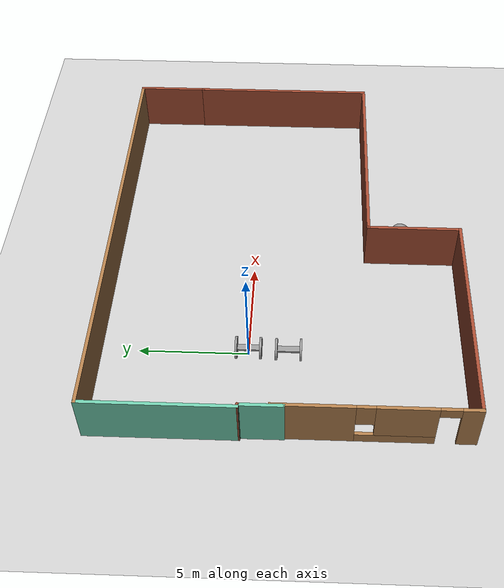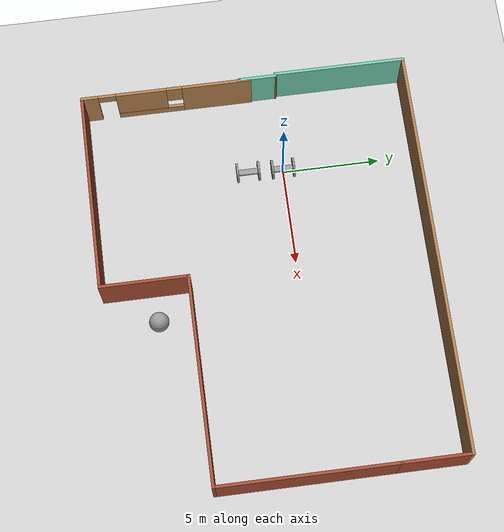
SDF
<sdf version="1.6">
 <world name="default">
  <plugin name="hello" filename="libhello.so"/>
  <light name="sun" type="directional">
   <pose>0 0 10 0 -0 0</pose>
   <diffuse>0.8 0.8 0.8 1</diffuse>
   <specular>0.2 0.2 0.2 1</specular>
   <attenuation>
    <range>1000</range>
    <constant>0.9</constant>
    <linear>0.01</linear>
    <quadratic>0.001</quadratic>
   </attenuation>
   <direction>-0.5 0.1 -0.9</direction>
  </light>
  <model name="ground_plane">
   <static>1</static>
   <link name="link">
    <collision name="collision">
     <geometry><plane><normal>0 0 1</normal><size>100 100</size></plane></geometry>
     <surface>
      <contact><collide_bitmask>65535</collide_bitmask></contact>
      <friction><ode><mu>100</mu><mu2>50</mu2></ode></friction>
     </surface>
    </collision>
    <visual name="visual">
     <cast_shadows>0</cast_shadows>
     <geometry><plane><normal>0 0 1</normal><size>100 100</size></plane></geometry>
     <material>
      <script><uri>file://media/materials/scripts/gazebo.material</uri><name>Gazebo/Grey</name></script>
     </material>
    </visual>
   </link>
  </model>
  <gravity>0 0 -9.8</gravity>
  <magnetic_field>6e-06 2.3e-05 -4.2e-05</magnetic_field>
  <atmosphere type="adiabatic"/>
  <physics name="default_physics" default="0" type="ode">
   <max_step_size>0.001</max_step_size>
   <real_time_factor>1</real_time_factor>
   <real_time_update_rate>1000</real_time_update_rate>
  </physics>
  <scene><ambient>0.4 0.4 0.4 1</ambient><background>0.7 0.7 0.7 1</background><shadows>1</shadows></scene>
  <audio><device>default</device></audio>
  <spherical_coordinates>
   <surface_model>EARTH_WGS84</surface_model>
   <latitude_deg>0</latitude_deg>
   <longitude_deg>0</longitude_deg>
   <elevation>0</elevation>
   <heading_deg>0</heading_deg>
  </spherical_coordinates>
  <model name="robothigh">
   <link name="link_0">
    <inertial>
     <mass>1</mass>
     <inertia>
      <ixx>0.166667</ixx>
      <ixy>0</ixy>
      <ixz>0</ixz>
      <iyy>0.166667</iyy>
      <iyz>0</iyz>
      <izz>0.166667</izz>
     </inertia>
    </inertial>
    <visual name="visual">
     <geometry><box><size>0.3 1 0.1</size></box></geometry>
     <material>
      <lighting>1</lighting>
      <script><uri>file://media/materials/scripts/gazebo.material</uri><name>Gazebo/Grey</name></script>
      <shader type="vertex"><normal_map>__default__</normal_map></shader>
      <ambient>0.3 0.3 0.3 1</ambient>
      <diffuse>0.7 0.7 0.7 1</diffuse>
      <specular>0.01 0.01 0.01 1</specular>
      <emissive>0 0 0 1</emissive>
     </material>
    </visual>
    <collision name="collision">
     <geometry><box><size>0.3 1 0.1</size></box></geometry>
     <surface>
      <friction>
       <ode><mu>1</mu><mu2>1</mu2><fdir1>0 0 0</fdir1><slip1>0</slip1><slip2>0</slip2></ode>
       <torsional>
        <coefficient>1</coefficient>
        <patch_radius>0</patch_radius>
        <surface_radius>0</surface_radius>
        <use_patch_radius>1</use_patch_radius>
        <ode><slip>0</slip></ode>
       </torsional>
      </friction>
      <bounce><restitution_coefficient>0</restitution_coefficient><threshold>1e+06</threshold></bounce>
      <contact>
       <collide_without_contact>0</collide_without_contact>
       <collide_without_contact_bitmask>1</collide_without_contact_bitmask>
       <collide_bitmask>1</collide_bitmask>
       <ode>
        <soft_cfm>0</soft_cfm>
        <soft_erp>0.2</soft_erp>
        <kp>1e+13</kp>
        <kd>1</kd>
        <max_vel>0.01</max_vel>
        <min_depth>0</min_depth>
       </ode>
       <bullet>
        <split_impulse>1</split_impulse>
        <split_impulse_penetration_threshold>-0.01</split_impulse_penetration_threshold>
        <soft_cfm>0</soft_cfm>
        <soft_erp>0.2</soft_erp>
        <kp>1e+13</kp>
        <kd>1</kd>
       </bullet>
      </contact>
     </surface>
    </collision>
   </link>
   <link name="link_1">
    <inertial>
     <mass>1</mass>
     <inertia><ixx>0.145833</ixx><ixy>0</ixy><ixz>0</ixz><iyy>0.145833</iyy><iyz>0</iyz><izz>0.125</izz></inertia>
    </inertial>
    <pose>0 -0.550048 0 1.5707 -0 0</pose>
    <visual name="visual">
     <geometry><cylinder><radius>0.5</radius><length>0.1</length></cylinder></geometry>
     <material>
      <lighting>1</lighting>
      <script><uri>file://media/materials/scripts/gazebo.material</uri><name>Gazebo/Grey</name></script>
      <shader type="vertex"><normal_map>__default__</normal_map></shader>
      <ambient>0.3 0.3 0.3 1</ambient>
      <diffuse>0.7 0.7 0.7 1</diffuse>
      <specular>0.01 0.01 0.01 1</specular>
      <emissive>0 0 0 1</emissive>
     </material>
    </visual>
    <collision name="collision">
     <geometry><cylinder><radius>0.5</radius><length>0.1</length></cylinder></geometry>
     <surface>
      <friction>
       <ode><mu>1</mu><mu2>1</mu2><fdir1>0 0 0</fdir1><slip1>0</slip1><slip2>0</slip2></ode>
       <torsional>
        <coefficient>1</coefficient>
        <patch_radius>0</patch_radius>
        <surface_radius>0</surface_radius>
        <use_patch_radius>1</use_patch_radius>
        <ode><slip>0</slip></ode>
       </torsional>
      </friction>
      <bounce><restitution_coefficient>0</restitution_coefficient><threshold>1e+06</threshold></bounce>
      <contact>
       <collide_without_contact>0</collide_without_contact>
       <collide_without_contact_bitmask>1</collide_without_contact_bitmask>
       <collide_bitmask>1</collide_bitmask>
       <ode>
        <soft_cfm>0</soft_cfm>
        <soft_erp>0.2</soft_erp>
        <kp>1e+13</kp>
        <kd>1</kd>
        <max_vel>0.01</max_vel>
        <min_depth>0</min_depth>
       </ode>
       <bullet>
        <split_impulse>1</split_impulse>
        <split_impulse_penetration_threshold>-0.01</split_impulse_penetration_threshold>
        <soft_cfm>0</soft_cfm>
        <soft_erp>0.2</soft_erp>
        <kp>1e+13</kp>
        <kd>1</kd>
       </bullet>
      </contact>
     </surface>
    </collision>
   </link>
   <link name="link_1_clone">
    <inertial>
     <mass>1</mass>
     <inertia><ixx>0.145833</ixx><ixy>0</ixy><ixz>0</ixz><iyy>0.145833</iyy><iyz>0</iyz><izz>0.125</izz></inertia>
    </inertial>
    <pose>0 0.550048 0 1.5707 -0 0</pose>
    <visual name="visual">
     <geometry><cylinder><radius>0.5</radius><length>0.1</length></cylinder></geometry>
     <material>
      <lighting>1</lighting>
      <script><uri>file://media/materials/scripts/gazebo.material</uri><name>Gazebo/Grey</name></script>
      <shader type="vertex"><normal_map>__default__</normal_map></shader>
      <ambient>0.3 0.3 0.3 1</ambient>
      <diffuse>0.7 0.7 0.7 1</diffuse>
      <specular>0.01 0.01 0.01 1</specular>
      <emissive>0 0 0 1</emissive>
     </material>
    </visual>
    <collision name="collision">
     <geometry><cylinder><radius>0.5</radius><length>0.1</length></cylinder></geometry>
     <surface>
      <friction>
       <ode><mu>1</mu><mu2>1</mu2><fdir1>0 0 0</fdir1><slip1>0</slip1><slip2>0</slip2></ode>
       <torsional>
        <coefficient>1</coefficient>
        <patch_radius>0</patch_radius>
        <surface_radius>0</surface_radius>
        <use_patch_radius>1</use_patch_radius>
        <ode><slip>0</slip></ode>
       </torsional>
      </friction>
      <bounce><restitution_coefficient>0</restitution_coefficient><threshold>1e+06</threshold></bounce>
      <contact>
       <collide_without_contact>0</collide_without_contact>
       <collide_without_contact_bitmask>1</collide_without_contact_bitmask>
       <collide_bitmask>1</collide_bitmask>
       <ode>
        <soft_cfm>0</soft_cfm>
        <soft_erp>0.2</soft_erp>
        <kp>1e+13</kp>
        <kd>1</kd>
        <max_vel>0.01</max_vel>
        <min_depth>0</min_depth>
       </ode>
       <bullet>
        <split_impulse>1</split_impulse>
        <split_impulse_penetration_threshold>-0.01</split_impulse_penetration_threshold>
        <soft_cfm>0</soft_cfm>
        <soft_erp>0.2</soft_erp>
        <kp>1e+13</kp>
        <kd>1</kd>
       </bullet>
      </contact>
     </surface>
    </collision>
   </link>
   <joint name="link_0_JOINT_1" type="revolute">
    <parent>link_0</parent>
    <child>link_1</child>
    <axis>
     <xyz>0 0 1</xyz>
     <use_parent_model_frame>0</use_parent_model_frame>
     <limit>
      <lower>-1.79769e+308</lower>
      <upper>1.79769e+308</upper>
      <effort>-1</effort>
      <velocity>-1</velocity>
     </limit>
     <dynamics>
      <spring_reference>0</spring_reference>
      <spring_stiffness>0</spring_stiffness>
      <damping>0</damping>
     </dynamics>
    </axis>
    <physics>
     <ode><limit><cfm>0</cfm><erp>0.2</erp></limit><suspension><cfm>0</cfm><erp>0.2</erp></suspension></ode>
    </physics>
   </joint>
   <joint name="link_0_JOINT_2" type="revolute">
    <parent>link_0</parent>
    <child>link_1_clone</child>
    <axis>
     <xyz>0 0 1</xyz>
     <use_parent_model_frame>0</use_parent_model_frame>
     <limit>
      <lower>-1.79769e+308</lower>
      <upper>1.79769e+308</upper>
      <effort>-1</effort>
      <velocity>-1</velocity>
     </limit>
     <dynamics>
      <spring_reference>0</spring_reference>
      <spring_stiffness>0</spring_stiffness>
      <damping>0</damping>
     </dynamics>
    </axis>
    <physics>
     <ode><limit><cfm>0</cfm><erp>0.2</erp></limit><suspension><cfm>0</cfm><erp>0.2</erp></suspension></ode>
    </physics>
   </joint>
   <static>0</static>
   <pose>0 -0.000995 0.500005 0 -0 0</pose>
  </model>
  <model name="robothigh_clone">
   <link name="link_0">
    <inertial>
     <mass>1</mass>
     <inertia>
      <ixx>0.166667</ixx>
      <ixy>0</ixy>
      <ixz>0</ixz>
      <iyy>0.166667</iyy>
      <iyz>0</iyz>
      <izz>0.166667</izz>
     </inertia>
    </inertial>
    <visual name="visual">
     <geometry><box><size>0.3 1 0.1</size></box></geometry>
     <material>
      <lighting>1</lighting>
      <script><uri>file://media/materials/scripts/gazebo.material</uri><name>Gazebo/Grey</name></script>
      <shader type="vertex"><normal_map>__default__</normal_map></shader>
      <ambient>0.3 0.3 0.3 1</ambient>
      <diffuse>0.7 0.7 0.7 1</diffuse>
      <specular>0.01 0.01 0.01 1</specular>
      <emissive>0 0 0 1</emissive>
     </material>
    </visual>
    <collision name="collision">
     <geometry><box><size>0.3 1 0.1</size></box></geometry>
     <surface>
      <friction>
       <ode><mu>1</mu><mu2>1</mu2><fdir1>0 0 0</fdir1><slip1>0</slip1><slip2>0</slip2></ode>
       <torsional>
        <coefficient>1</coefficient>
        <patch_radius>0</patch_radius>
        <surface_radius>0</surface_radius>
        <use_patch_radius>1</use_patch_radius>
        <ode><slip>0</slip></ode>
       </torsional>
      </friction>
      <bounce><restitution_coefficient>0</restitution_coefficient><threshold>1e+06</threshold></bounce>
      <contact>
       <collide_without_contact>0</collide_without_contact>
       <collide_without_contact_bitmask>1</collide_without_contact_bitmask>
       <collide_bitmask>1</collide_bitmask>
       <ode>
        <soft_cfm>0</soft_cfm>
        <soft_erp>0.2</soft_erp>
        <kp>1e+13</kp>
        <kd>1</kd>
        <max_vel>0.01</max_vel>
        <min_depth>0</min_depth>
       </ode>
       <bullet>
        <split_impulse>1</split_impulse>
        <split_impulse_penetration_threshold>-0.01</split_impulse_penetration_threshold>
        <soft_cfm>0</soft_cfm>
        <soft_erp>0.2</soft_erp>
        <kp>1e+13</kp>
        <kd>1</kd>
       </bullet>
      </contact>
     </surface>
    </collision>
   </link>
   <link name="link_1">
    <inertial>
     <mass>1</mass>
     <inertia><ixx>0.145833</ixx><ixy>0</ixy><ixz>0</ixz><iyy>0.145833</iyy><iyz>0</iyz><izz>0.125</izz></inertia>
    </inertial>
    <pose>0 -0.550048 0 1.5707 -0 0</pose>
    <visual name="visual">
     <geometry><cylinder><radius>0.5</radius><length>0.1</length></cylinder></geometry>
     <material>
      <lighting>1</lighting>
      <script><uri>file://media/materials/scripts/gazebo.material</uri><name>Gazebo/Grey</name></script>
      <shader type="vertex"><normal_map>__default__</normal_map></shader>
      <ambient>0.3 0.3 0.3 1</ambient>
      <diffuse>0.7 0.7 0.7 1</diffuse>
      <specular>0.01 0.01 0.01 1</specular>
      <emissive>0 0 0 1</emissive>
     </material>
    </visual>
    <collision name="collision">
     <geometry><cylinder><radius>0.5</radius><length>0.1</length></cylinder></geometry>
     <surface>
      <friction>
       <ode><mu>1</mu><mu2>1</mu2><fdir1>0 0 0</fdir1><slip1>0</slip1><slip2>0</slip2></ode>
       <torsional>
        <coefficient>1</coefficient>
        <patch_radius>0</patch_radius>
        <surface_radius>0</surface_radius>
        <use_patch_radius>1</use_patch_radius>
        <ode><slip>0</slip></ode>
       </torsional>
      </friction>
      <bounce><restitution_coefficient>0</restitution_coefficient><threshold>1e+06</threshold></bounce>
      <contact>
       <collide_without_contact>0</collide_without_contact>
       <collide_without_contact_bitmask>1</collide_without_contact_bitmask>
       <collide_bitmask>1</collide_bitmask>
       <ode>
        <soft_cfm>0</soft_cfm>
        <soft_erp>0.2</soft_erp>
        <kp>1e+13</kp>
        <kd>1</kd>
        <max_vel>0.01</max_vel>
        <min_depth>0</min_depth>
       </ode>
       <bullet>
        <split_impulse>1</split_impulse>
        <split_impulse_penetration_threshold>-0.01</split_impulse_penetration_threshold>
        <soft_cfm>0</soft_cfm>
        <soft_erp>0.2</soft_erp>
        <kp>1e+13</kp>
        <kd>1</kd>
       </bullet>
      </contact>
     </surface>
    </collision>
   </link>
   <link name="link_1_clone">
    <inertial>
     <mass>1</mass>
     <inertia><ixx>0.145833</ixx><ixy>0</ixy><ixz>0</ixz><iyy>0.145833</iyy><iyz>0</iyz><izz>0.125</izz></inertia>
    </inertial>
    <pose>0 0.550048 0 1.5707 -0 0</pose>
    <visual name="visual">
     <geometry><cylinder><radius>0.5</radius><length>0.1</length></cylinder></geometry>
     <material>
      <lighting>1</lighting>
      <script><uri>file://media/materials/scripts/gazebo.material</uri><name>Gazebo/Grey</name></script>
      <shader type="vertex"><normal_map>__default__</normal_map></shader>
      <ambient>0.3 0.3 0.3 1</ambient>
      <diffuse>0.7 0.7 0.7 1</diffuse>
      <specular>0.01 0.01 0.01 1</specular>
      <emissive>0 0 0 1</emissive>
     </material>
    </visual>
    <collision name="collision">
     <geometry><cylinder><radius>0.5</radius><length>0.1</length></cylinder></geometry>
     <surface>
      <friction>
       <ode><mu>1</mu><mu2>1</mu2><fdir1>0 0 0</fdir1><slip1>0</slip1><slip2>0</slip2></ode>
       <torsional>
        <coefficient>1</coefficient>
        <patch_radius>0</patch_radius>
        <surface_radius>0</surface_radius>
        <use_patch_radius>1</use_patch_radius>
        <ode><slip>0</slip></ode>
       </torsional>
      </friction>
      <bounce><restitution_coefficient>0</restitution_coefficient><threshold>1e+06</threshold></bounce>
      <contact>
       <collide_without_contact>0</collide_without_contact>
       <collide_without_contact_bitmask>1</collide_without_contact_bitmask>
       <collide_bitmask>1</collide_bitmask>
       <ode>
        <soft_cfm>0</soft_cfm>
        <soft_erp>0.2</soft_erp>
        <kp>1e+13</kp>
        <kd>1</kd>
        <max_vel>0.01</max_vel>
        <min_depth>0</min_depth>
       </ode>
       <bullet>
        <split_impulse>1</split_impulse>
        <split_impulse_penetration_threshold>-0.01</split_impulse_penetration_threshold>
        <soft_cfm>0</soft_cfm>
        <soft_erp>0.2</soft_erp>
        <kp>1e+13</kp>
        <kd>1</kd>
       </bullet>
      </contact>
     </surface>
    </collision>
   </link>
   <joint name="link_0_JOINT_1" type="revolute">
    <parent>link_0</parent>
    <child>link_1</child>
    <axis>
     <xyz>0 0 1</xyz>
     <use_parent_model_frame>0</use_parent_model_frame>
     <limit>
      <lower>-1.79769e+308</lower>
      <upper>1.79769e+308</upper>
      <effort>-1</effort>
      <velocity>-1</velocity>
     </limit>
     <dynamics>
      <spring_reference>0</spring_reference>
      <spring_stiffness>0</spring_stiffness>
      <damping>0</damping>
     </dynamics>
    </axis>
    <physics>
     <ode><limit><cfm>0</cfm><erp>0.2</erp></limit><suspension><cfm>0</cfm><erp>0.2</erp></suspension></ode>
    </physics>
   </joint>
   <joint name="link_0_JOINT_2" type="revolute">
    <parent>link_0</parent>
    <child>link_1_clone</child>
    <axis>
     <xyz>0 0 1</xyz>
     <use_parent_model_frame>0</use_parent_model_frame>
     <limit>
      <lower>-1.79769e+308</lower>
      <upper>1.79769e+308</upper>
      <effort>-1</effort>
      <velocity>-1</velocity>
     </limit>
     <dynamics>
      <spring_reference>0</spring_reference>
      <spring_stiffness>0</spring_stiffness>
      <damping>0</damping>
     </dynamics>
    </axis>
    <physics>
     <ode><limit><cfm>0</cfm><erp>0.2</erp></limit><suspension><cfm>0</cfm><erp>0.2</erp></suspension></ode>
    </physics>
   </joint>
   <static>0</static>
   <pose>-0.035905 -1.80641 0.500003 3e-06 -0 0</pose>
  </model>
  <model name="building2">
   <pose>5.87157 -1.505 0 0 -0 0</pose>
   <link name="Wall_0">
    <pose>-10.1416 -3.975 0 0 -0 -1.5708</pose>
    <visual name="Wall_0_Visual_0">
     <pose>-2.5932 0 1.25 0 -0 0</pose>
     <geometry><box><size>3.5636 0.15 2.5</size></box></geometry>
     <material>
      <script><uri>file://media/materials/scripts/gazebo.material</uri><name>Gazebo/Wood</name></script>
      <ambient>1 1 1 1</ambient>
     </material>
     <meta><layer>0</layer></meta>
    </visual>
    <collision name="Wall_0_Collision_0">
     <geometry><box><size>3.5636 0.15 2.5</size></box></geometry>
     <pose>-2.5932 0 1.25 0 -0 0</pose>
    </collision>
    <visual name="Wall_0_Visual_1">
     <pose>3.92616 0 1.25 0 -0 0</pose>
     <geometry><box><size>0.897676 0.15 2.5</size></box></geometry>
     <material>
      <script><uri>file://media/materials/scripts/gazebo.material</uri><name>Gazebo/Wood</name></script>
      <ambient>1 1 1 1</ambient>
     </material>
     <meta><layer>0</layer></meta>
    </visual>
    <collision name="Wall_0_Collision_1">
     <geometry><box><size>0.897676 0.15 2.5</size></box></geometry>
     <pose>3.92616 0 1.25 0 -0 0</pose>
    </collision>
    <visual name="Wall_0_Visual_2">
     <pose>0.882962 0 0.25 0 -0 0</pose>
     <geometry><box><size>3.38872 0.15 0.5</size></box></geometry>
     <material>
      <script><uri>file://media/materials/scripts/gazebo.material</uri><name>Gazebo/Wood</name></script>
      <ambient>1 1 1 1</ambient>
     </material>
     <meta><layer>0</layer></meta>
    </visual>
    <collision name="Wall_0_Collision_2">
     <geometry><box><size>3.38872 0.15 0.5</size></box></geometry>
     <pose>0.882962 0 0.25 0 -0 0</pose>
    </collision>
    <visual name="Wall_0_Visual_3">
     <pose>1.28296 0 1.5 0 -0 0</pose>
     <geometry><box><size>2.58872 0.15 2</size></box></geometry>
     <material>
      <script><uri>file://media/materials/scripts/gazebo.material</uri><name>Gazebo/Wood</name></script>
      <ambient>1 1 1 1</ambient>
     </material>
     <meta><layer>0</layer></meta>
    </visual>
    <collision name="Wall_0_Collision_3">
     <geometry><box><size>2.58872 0.15 2</size></box></geometry>
     <pose>1.28296 0 1.5 0 -0 0</pose>
    </collision>
    <visual name="Wall_0_Visual_4">
     <pose>-0.4114 0 1.9 0 -0 0</pose>
     <geometry><box><size>0.8 0.15 1.2</size></box></geometry>
     <material>
      <script><uri>file://media/materials/scripts/gazebo.material</uri><name>Gazebo/Wood</name></script>
      <ambient>1 1 1 1</ambient>
     </material>
     <meta><layer>0</layer></meta>
    </visual>
    <collision name="Wall_0_Collision_4">
     <geometry><box><size>0.8 0.15 1.2</size></box></geometry>
     <pose>-0.4114 0 1.9 0 -0 0</pose>
    </collision>
    <visual name="Wall_0_Visual_5">
     <pose>3.02732 0 2.25 0 -0 0</pose>
     <geometry><box><size>0.9 0.15 0.5</size></box></geometry>
     <material>
      <script><uri>file://media/materials/scripts/gazebo.material</uri><name>Gazebo/Wood</name></script>
      <ambient>1 1 1 1</ambient>
     </material>
     <meta><layer>0</layer></meta>
    </visual>
    <collision name="Wall_0_Collision_5">
     <geometry><box><size>0.9 0.15 0.5</size></box></geometry>
     <pose>3.02732 0 2.25 0 -0 0</pose>
    </collision>
   </link>
   <link name="Wall_10">
    <collision name="Wall_10_Collision">
     <geometry><box><size>2 0.15 2.5</size></box></geometry>
     <pose>0 0 1.25 0 -0 0</pose>
    </collision>
    <visual name="Wall_10_Visual">
     <pose>0 0 1.25 0 -0 0</pose>
     <geometry><box><size>2 0.15 2.5</size></box></geometry>
     <material>
      <script><uri>file://media/materials/scripts/gazebo.material</uri><name>Gazebo/Grey</name></script>
      <ambient>0.435294 0.796078 0.67451 1</ambient>
     </material>
     <meta><layer>0</layer></meta>
    </visual>
    <pose>-10.195 0.724118 0 0 -0 -1.5708</pose>
   </link>
   <link name="Wall_2">
    <collision name="Wall_2_Collision">
     <geometry><box><size>10.25 0.15 2.5</size></box></geometry>
     <pose>0 0 1.25 0 -0 0</pose>
    </collision>
    <visual name="Wall_2_Visual">
     <pose>0 0 1.25 0 -0 0</pose>
     <geometry><box><size>10.25 0.15 2.5</size></box></geometry>
     <material>
      <script><uri>file://media/materials/scripts/gazebo.material</uri><name>Gazebo/Bricks</name></script>
      <ambient>1 1 1 1</ambient>
     </material>
     <meta><layer>0</layer></meta>
    </visual>
    <pose>-5.09157 -8.275 0 0 -0 0</pose>
   </link>
   <link name="Wall_3">
    <collision name="Wall_3_Collision">
     <geometry><box><size>4.5 0.15 2.5</size></box></geometry>
     <pose>0 0 1.25 0 -0 0</pose>
    </collision>
    <visual name="Wall_3_Visual">
     <pose>0 0 1.25 0 -0 0</pose>
     <geometry><box><size>4.5 0.15 2.5</size></box></geometry>
     <material>
      <script><uri>file://media/materials/scripts/gazebo.material</uri><name>Gazebo/Bricks</name></script>
      <ambient>1 1 1 1</ambient>
     </material>
     <meta><layer>0</layer></meta>
    </visual>
    <pose>-0.041573 -6.1 0 0 -0 1.5708</pose>
   </link>
   <link name="Wall_4">
    <collision name="Wall_4_Collision">
     <geometry><box><size>10.5 0.15 2.5</size></box></geometry>
     <pose>0 0 1.25 0 -0 0</pose>
    </collision>
    <visual name="Wall_4_Visual">
     <pose>0 0 1.25 0 -0 0</pose>
     <geometry><box><size>10.5 0.15 2.5</size></box></geometry>
     <material>
      <script><uri>file://media/materials/scripts/gazebo.material</uri><name>Gazebo/Bricks</name></script>
      <ambient>1 1 1 1</ambient>
     </material>
     <meta><layer>0</layer></meta>
    </visual>
    <pose>5.13343 -3.925 0 0 -0 0</pose>
   </link>
   <link name="Wall_5">
    <collision name="Wall_5_Collision">
     <geometry><box><size>9 0.15 2.5</size></box></geometry>
     <pose>0 0 1.25 0 -0 0</pose>
    </collision>
    <visual name="Wall_5_Visual">
     <pose>0 0 1.25 0 -0 0</pose>
     <geometry><box><size>9 0.15 2.5</size></box></geometry>
     <material>
      <script><uri>file://media/materials/scripts/gazebo.material</uri><name>Gazebo/Bricks</name></script>
      <ambient>1 1 1 1</ambient>
     </material>
     <meta><layer>0</layer></meta>
    </visual>
    <pose>10.3084 0.5 0 0 -0 1.5708</pose>
   </link>
   <link name="Wall_6">
    <collision name="Wall_6_Collision">
     <geometry><box><size>3.5 0.15 2.5</size></box></geometry>
     <pose>0 0 1.25 0 -0 0</pose>
    </collision>
    <visual name="Wall_6_Visual">
     <pose>0 0 1.25 0 -0 0</pose>
     <geometry><box><size>3.5 0.15 2.5</size></box></geometry>
     <material>
      <script><uri>file://media/materials/scripts/gazebo.material</uri><name>Gazebo/Bricks</name></script>
      <ambient>1 1 1 1</ambient>
     </material>
     <meta><layer>0</layer></meta>
    </visual>
    <pose>10.3084 6.6 0 0 -0 1.5708</pose>
   </link>
   <link name="Wall_7">
    <collision name="Wall_7_Collision">
     <geometry><box><size>20.75 0.15 2.5</size></box></geometry>
     <pose>0 0 1.25 0 -0 0</pose>
    </collision>
    <visual name="Wall_7_Visual">
     <pose>0 0 1.25 0 -0 0</pose>
     <geometry><box><size>20.75 0.15 2.5</size></box></geometry>
     <material>
      <script><uri>file://media/materials/scripts/gazebo.material</uri><name>Gazebo/Wood</name></script>
      <ambient>1 1 1 1</ambient>
     </material>
     <meta><layer>0</layer></meta>
    </visual>
    <pose>0.008427 8.275 0 0 -0 3.14159</pose>
   </link>
   <link name="Wall_8">
    <collision name="Wall_8_Collision">
     <geometry><box><size>6.75 0.15 2.5</size></box></geometry>
     <pose>0 0 1.25 0 -0 0</pose>
    </collision>
    <visual name="Wall_8_Visual">
     <pose>0 0 1.25 0 -0 0</pose>
     <geometry><box><size>6.75 0.15 2.5</size></box></geometry>
     <material>
      <script><uri>file://media/materials/scripts/gazebo.material</uri><name>Gazebo/Grey</name></script>
      <ambient>0.435294 0.796078 0.67451 1</ambient>
     </material>
     <meta><layer>0</layer></meta>
    </visual>
    <pose>-10.2916 4.975 0 0 -0 -1.5708</pose>
   </link>
   <link name="Wall_9">
    <collision name="Wall_9_Collision">
     <geometry><box><size>0.25 0.15 2.5</size></box></geometry>
     <pose>0 0 1.25 0 -0 0</pose>
    </collision>
    <visual name="Wall_9_Visual">
     <pose>0 0 1.25 0 -0 0</pose>
     <geometry><box><size>0.25 0.15 2.5</size></box></geometry>
     <material>
      <script><uri>file://media/materials/scripts/gazebo.material</uri><name>Gazebo/Bricks</name></script>
      <ambient>1 1 1 1</ambient>
     </material>
     <meta><layer>0</layer></meta>
    </visual>
    <pose>-10.2433 1.66206 0 0 -0 -0.261799</pose>
   </link>
   <static>1</static>
  </model>
  <model name="my_ball">
   <link name="link_0">
    <inertial>
     <mass>1</mass>
     <inertia><ixx>0.1</ixx><ixy>0</ixy><ixz>0</ixz><iyy>0.1</iyy><iyz>0</iyz><izz>0.1</izz></inertia>
    </inertial>
    <visual name="visual">
     <geometry><sphere><radius>0.5</radius></sphere></geometry>
     <material>
      <lighting>1</lighting>
      <script><uri>file://media/materials/scripts/gazebo.material</uri><name>Gazebo/Grey</name></script>
      <shader type="vertex"><normal_map>__default__</normal_map></shader>
      <ambient>1 1 1 1</ambient>
      <diffuse>1 1 1 1</diffuse>
      <specular>1 1 1 1</specular>
      <emissive>1 1 1 1</emissive>
     </material>
    </visual>
    <collision name="collision">
     <geometry><sphere><radius>0.5</radius></sphere></geometry>
     <surface>
      <friction>
       <ode><mu>1</mu><mu2>1</mu2><fdir1>0 0 0</fdir1><slip1>0</slip1><slip2>0</slip2></ode>
       <torsional>
        <coefficient>1</coefficient>
        <patch_radius>0</patch_radius>
        <surface_radius>0</surface_radius>
        <use_patch_radius>1</use_patch_radius>
        <ode><slip>0</slip></ode>
       </torsional>
      </friction>
      <bounce><restitution_coefficient>0</restitution_coefficient><threshold>1e+06</threshold></bounce>
      <contact>
       <collide_without_contact>0</collide_without_contact>
       <collide_without_contact_bitmask>1</collide_without_contact_bitmask>
       <collide_bitmask>1</collide_bitmask>
       <ode>
        <soft_cfm>0</soft_cfm>
        <soft_erp>0.2</soft_erp>
        <kp>1e+13</kp>
        <kd>1</kd>
        <max_vel>0.01</max_vel>
        <min_depth>0</min_depth>
       </ode>
       <bullet>
        <split_impulse>1</split_impulse>
        <split_impulse_penetration_threshold>-0.01</split_impulse_penetration_threshold>
        <soft_cfm>0</soft_cfm>
        <soft_erp>0.2</soft_erp>
        <kp>1e+13</kp>
        <kd>1</kd>
       </bullet>
      </contact>
     </surface>
    </collision>
   </link>
   <static>0</static>
   <pose>7.38265 -7.17425 0.5 0 -0 0</pose>
  </model>
 </world>
</sdf>
